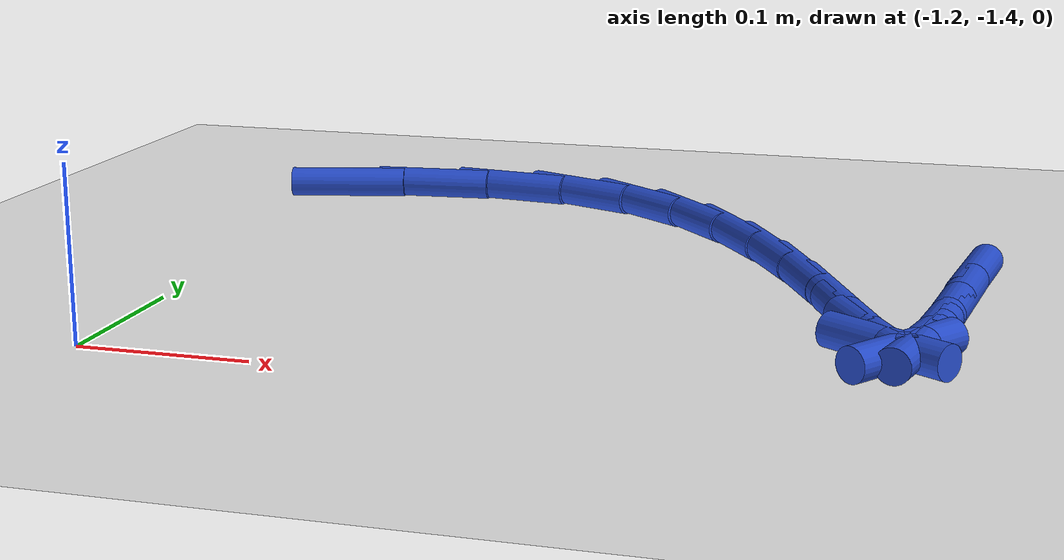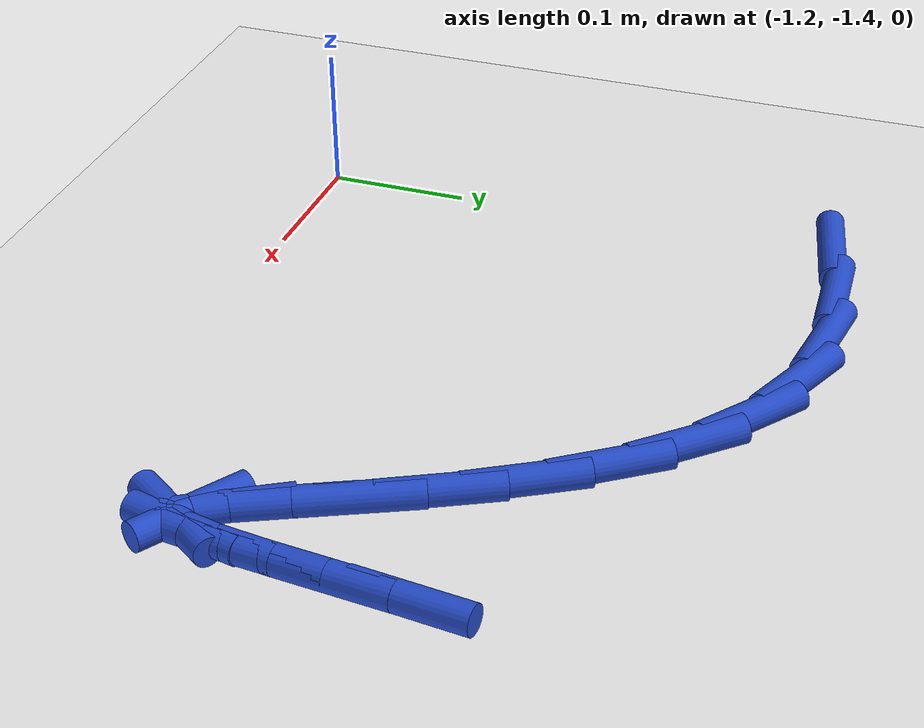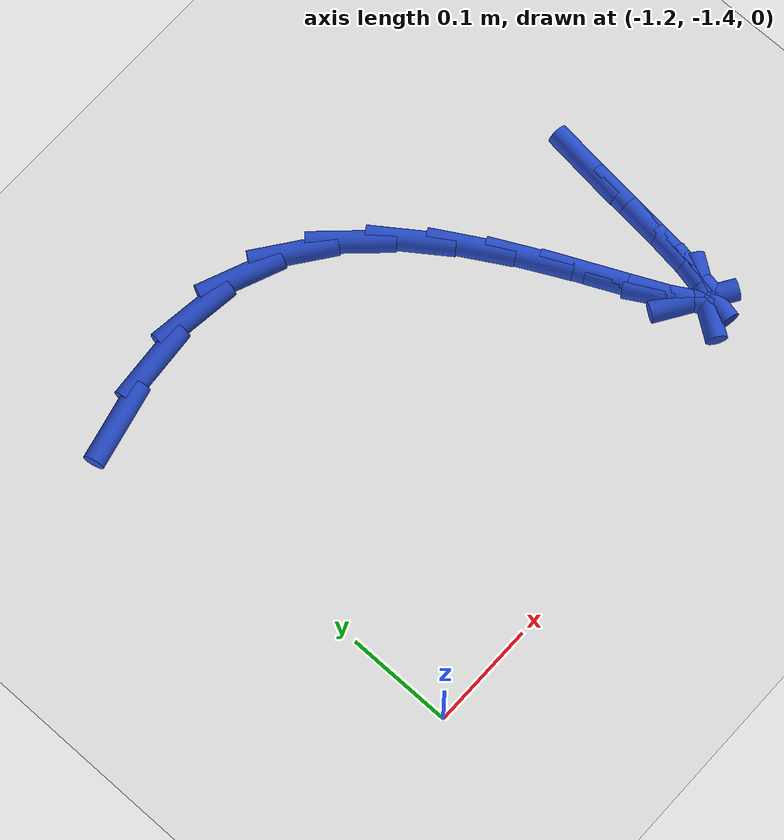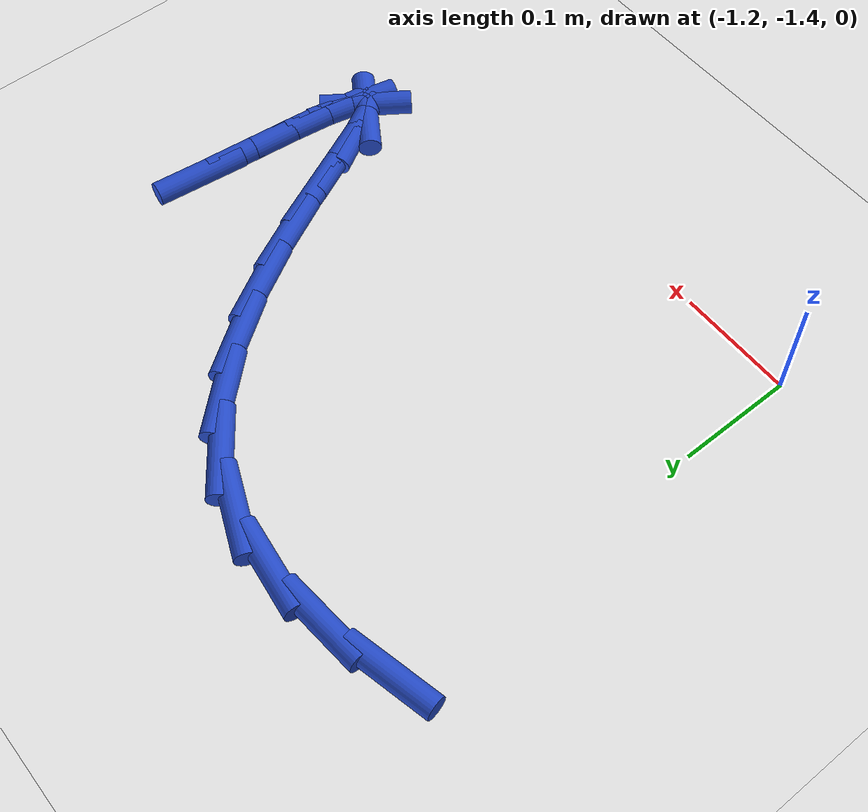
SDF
<sdf version="1.6">
 <world name="default">
  <model name="ground_plane">
   <static>1</static>
   <link name="link">
    <collision name="collision">
     <geometry><plane><normal>0 0 1</normal><size>100 100</size></plane></geometry>
     <surface><friction><ode><mu>100</mu><mu2>50</mu2></ode></friction></surface>
    </collision>
    <visual name="visual">
     <cast_shadows>0</cast_shadows>
     <geometry><plane><normal>0 0 1</normal><size>100 100</size></plane></geometry>
     <material>
      <script><uri>file://media/materials/scripts/gazebo.material</uri><name>Gazebo/WhiteGlow</name></script>
     </material>
    </visual>
   </link>
  </model>
  <model name="line">
   <link name="link_168">
    <pose>-1.1960054222316465 -1.0201050160940086 0.01 0 1.57 0.2303707327423145</pose>
    <collision name="collision">
     <geometry><cylinder><radius>0.01</radius><length>0.08</length></cylinder></geometry>
    </collision>
    <visual name="visual">
     <material>
      <script><name>Gazebo/Blue</name><uri>file://media/materials/scripts/gazebo.material</uri></script>
     </material>
     <geometry><cylinder><radius>0.01</radius><length>0.08</length></cylinder></geometry>
    </visual>
   </link>
   <link name="link_169">
    <pose>-1.1364452035195909 -1.00613609273114 0.01 0 1.57 0.08314186783753912</pose>
    <collision name="collision">
     <geometry><cylinder><radius>0.01</radius><length>0.08</length></cylinder></geometry>
    </collision>
    <visual name="visual">
     <material>
      <script><name>Gazebo/Blue</name><uri>file://media/materials/scripts/gazebo.material</uri></script>
     </material>
     <geometry><cylinder><radius>0.01</radius><length>0.08</length></cylinder></geometry>
    </visual>
   </link>
   <link name="link_170">
    <pose>-1.079565516081476 -1.0013960823541774 0.01 0 1.57 -0.12276971686396801</pose>
    <collision name="collision">
     <geometry><cylinder><radius>0.01</radius><length>0.08</length></cylinder></geometry>
    </collision>
    <visual name="visual">
     <material>
      <script><name>Gazebo/Blue</name><uri>file://media/materials/scripts/gazebo.material</uri></script>
     </material>
     <geometry><cylinder><radius>0.01</radius><length>0.08</length></cylinder></geometry>
    </visual>
   </link>
   <link name="link_171">
    <pose>-1.0269412107383953 -1.0078894095984212 0.01 0 1.57 -0.3894991025865478</pose>
    <collision name="collision">
     <geometry><cylinder><radius>0.01</radius><length>0.08</length></cylinder></geometry>
    </collision>
    <visual name="visual">
     <material>
      <script><name>Gazebo/Blue</name><uri>file://media/materials/scripts/gazebo.material</uri></script>
     </material>
     <geometry><cylinder><radius>0.01</radius><length>0.08</length></cylinder></geometry>
    </visual>
   </link>
   <link name="link_172">
    <pose>-0.9799742824322626 -1.0271679013420891 0.01 0 1.57 -0.6354680973041653</pose>
    <collision name="collision">
     <geometry><cylinder><radius>0.01</radius><length>0.08</length></cylinder></geometry>
    </collision>
    <visual name="visual">
     <material>
      <script><name>Gazebo/Blue</name><uri>file://media/materials/scripts/gazebo.material</uri></script>
     </material>
     <geometry><cylinder><radius>0.01</radius><length>0.08</length></cylinder></geometry>
    </visual>
   </link>
   <link name="link_173">
    <pose>-0.9388203365067268 -1.0575198961788208 0.01 0 1.57 -0.8198423753842939</pose>
    <collision name="collision">
     <geometry><cylinder><radius>0.01</radius><length>0.08</length></cylinder></geometry>
    </collision>
    <visual name="visual">
     <material>
      <script><name>Gazebo/Blue</name><uri>file://media/materials/scripts/gazebo.material</uri></script>
     </material>
     <geometry><cylinder><radius>0.01</radius><length>0.08</length></cylinder></geometry>
    </visual>
   </link>
   <link name="link_174">
    <pose>-0.9030882932328859 -1.095802318052998 0.01 0 1.57 -0.9514116430368149</pose>
    <collision name="collision">
     <geometry><cylinder><radius>0.01</radius><length>0.08</length></cylinder></geometry>
    </collision>
    <visual name="visual">
     <material>
      <script><name>Gazebo/Blue</name><uri>file://media/materials/scripts/gazebo.material</uri></script>
     </material>
     <geometry><cylinder><radius>0.01</radius><length>0.08</length></cylinder></geometry>
    </visual>
   </link>
   <link name="link_175">
    <pose>-0.8723847401677395 -1.1388659830394183 0.01 0 1.57 -1.0427891623635435</pose>
    <collision name="collision">
     <geometry><cylinder><radius>0.01</radius><length>0.08</length></cylinder></geometry>
    </collision>
    <visual name="visual">
     <material>
      <script><name>Gazebo/Blue</name><uri>file://media/materials/scripts/gazebo.material</uri></script>
     </material>
     <geometry><cylinder><radius>0.01</radius><length>0.08</length></cylinder></geometry>
    </visual>
   </link>
   <link name="link_176">
    <pose>-0.8463162648682876 -1.1835617072128775 0.01 0 1.57 -1.1027578889592617</pose>
    <collision name="collision">
     <geometry><cylinder><radius>0.01</radius><length>0.08</length></cylinder></geometry>
    </collision>
    <visual name="visual">
     <material>
      <script><name>Gazebo/Blue</name><uri>file://media/materials/scripts/gazebo.material</uri></script>
     </material>
     <geometry><cylinder><radius>0.01</radius><length>0.08</length></cylinder></geometry>
    </visual>
   </link>
   <link name="link_177">
    <pose>-0.8244894548915311 -1.2267403066481721 0.01 0 1.57 -1.1340379423104694</pose>
    <collision name="collision">
     <geometry><cylinder><radius>0.01</radius><length>0.08</length></cylinder></geometry>
    </collision>
    <visual name="visual">
     <material>
      <script><name>Gazebo/Blue</name><uri>file://media/materials/scripts/gazebo.material</uri></script>
     </material>
     <geometry><cylinder><radius>0.01</radius><length>0.08</length></cylinder></geometry>
    </visual>
   </link>
   <link name="link_178">
    <pose>-0.8065108977944702 -1.2652525974200999 0.01 0 1.57 -1.1288711071200452</pose>
    <collision name="collision">
     <geometry><cylinder><radius>0.01</radius><length>0.08</length></cylinder></geometry>
    </collision>
    <visual name="visual">
     <material>
      <script><name>Gazebo/Blue</name><uri>file://media/materials/scripts/gazebo.material</uri></script>
     </material>
     <geometry><cylinder><radius>0.01</radius><length>0.08</length></cylinder></geometry>
    </visual>
   </link>
   <link name="link_179">
    <pose>-0.7919871811341058 -1.295949395603454 0.01 0 1.57 -1.0445431652016988</pose>
    <collision name="collision">
     <geometry><cylinder><radius>0.01</radius><length>0.08</length></cylinder></geometry>
    </collision>
    <visual name="visual">
     <material>
      <script><name>Gazebo/Blue</name><uri>file://media/materials/scripts/gazebo.material</uri></script>
     </material>
     <geometry><cylinder><radius>0.01</radius><length>0.08</length></cylinder></geometry>
    </visual>
   </link>
   <link name="link_180">
    <pose>-0.7805248924674385 -1.3156815172730332 0.01 0 1.57 -0.5715609571171711</pose>
    <collision name="collision">
     <geometry><cylinder><radius>0.01</radius><length>0.08</length></cylinder></geometry>
    </collision>
    <visual name="visual">
     <material>
      <script><name>Gazebo/Blue</name><uri>file://media/materials/scripts/gazebo.material</uri></script>
     </material>
     <geometry><cylinder><radius>0.01</radius><length>0.08</length></cylinder></geometry>
    </visual>
   </link>
   <link name="link_181">
    <pose>-0.7717284664066794 -1.3213391411959563 0.01 0 1.57 0.9596015422782043</pose>
    <collision name="collision">
     <geometry><cylinder><radius>0.01</radius><length>0.08</length></cylinder></geometry>
    </collision>
    <visual name="visual">
     <material>
      <script><name>Gazebo/Blue</name><uri>file://media/materials/scripts/gazebo.material</uri></script>
     </material>
     <geometry><cylinder><radius>0.01</radius><length>0.08</length></cylinder></geometry>
    </visual>
   </link>
   <link name="link_182">
    <pose>-0.7650900639077075 -1.31186516640064 0.01 0 1.57 1.3470626796428657</pose>
    <collision name="collision">
     <geometry><cylinder><radius>0.01</radius><length>0.08</length></cylinder></geometry>
    </collision>
    <visual name="visual">
     <material>
      <script><name>Gazebo/Blue</name><uri>file://media/materials/scripts/gazebo.material</uri></script>
     </material>
     <geometry><cylinder><radius>0.01</radius><length>0.08</length></cylinder></geometry>
    </visual>
   </link>
   <link name="link_183">
    <pose>-0.7599369020082534 -1.2892181924264008 0.01 0 1.57 1.442011996785321</pose>
    <collision name="collision">
     <geometry><cylinder><radius>0.01</radius><length>0.08</length></cylinder></geometry>
    </collision>
    <visual name="visual">
     <material>
      <script><name>Gazebo/Blue</name><uri>file://media/materials/scripts/gazebo.material</uri></script>
     </material>
     <geometry><cylinder><radius>0.01</radius><length>0.08</length></cylinder></geometry>
    </visual>
   </link>
   <link name="link_184">
    <pose>-0.7555830196725992 -1.2555977559945812 0.01 0 1.57 1.47110134005775</pose>
    <collision name="collision">
     <geometry><cylinder><radius>0.01</radius><length>0.08</length></cylinder></geometry>
    </collision>
    <visual name="visual">
     <material>
      <script><name>Gazebo/Blue</name><uri>file://media/materials/scripts/gazebo.material</uri></script>
     </material>
     <geometry><cylinder><radius>0.01</radius><length>0.08</length></cylinder></geometry>
    </visual>
   </link>
   <link name="link_185">
    <pose>-0.7513424558650265 -1.2132033938265236 0.01 0 1.57 1.4728196581608564</pose>
    <collision name="collision">
     <geometry><cylinder><radius>0.01</radius><length>0.08</length></cylinder></geometry>
    </collision>
    <visual name="visual">
     <material>
      <script><name>Gazebo/Blue</name><uri>file://media/materials/scripts/gazebo.material</uri></script>
     </material>
     <geometry><cylinder><radius>0.01</radius><length>0.08</length></cylinder></geometry>
    </visual>
   </link>
   <link name="link_186">
    <pose>-0.7465292495498173 -1.1642346426435692 0.01 0 1.57 1.457459595236133</pose>
    <collision name="collision">
     <geometry><cylinder><radius>0.01</radius><length>0.08</length></cylinder></geometry>
    </collision>
    <visual name="visual">
     <material>
      <script><name>Gazebo/Blue</name><uri>file://media/materials/scripts/gazebo.material</uri></script>
     </material>
     <geometry><cylinder><radius>0.01</radius><length>0.08</length></cylinder></geometry>
    </visual>
   </link>
  </model>
 </world>
</sdf>
